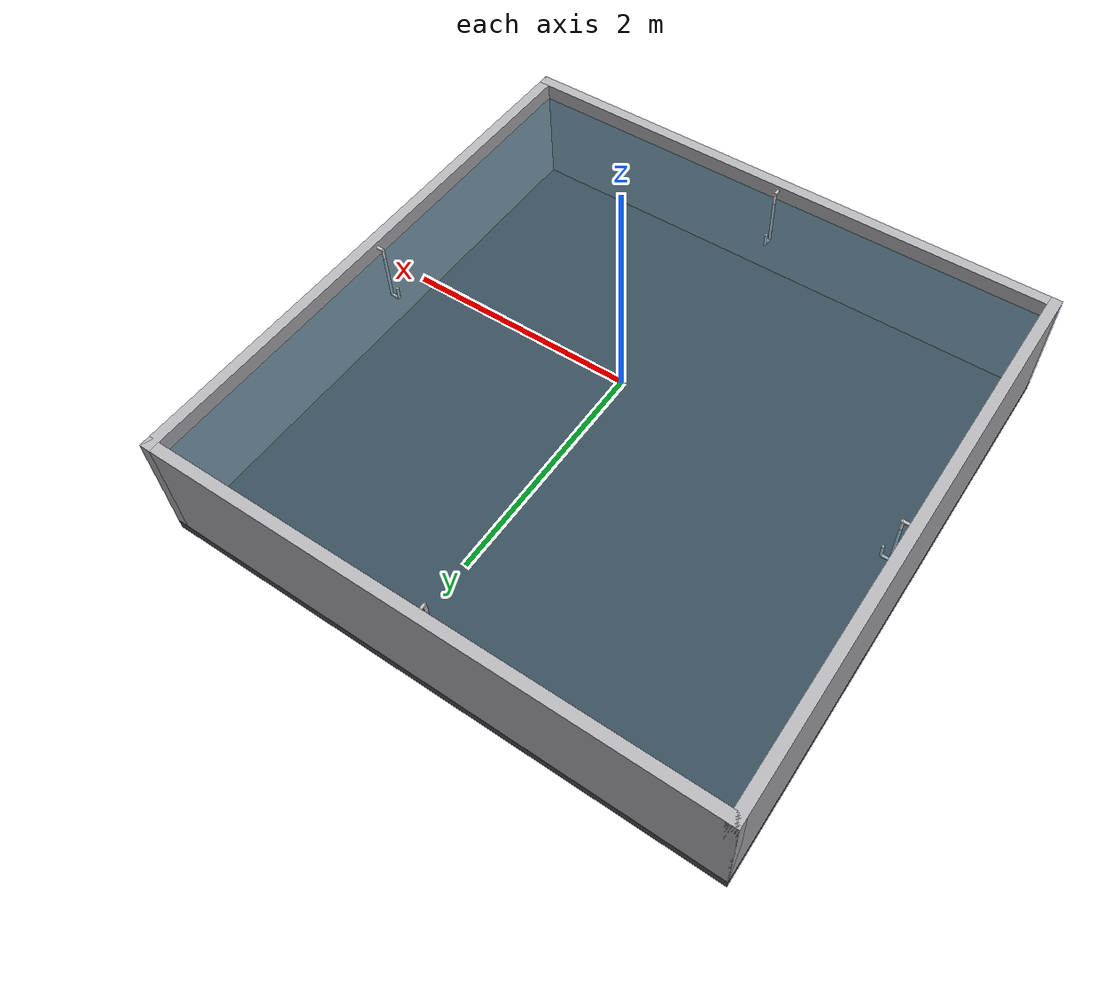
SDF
<?xml version="1.0" ?>
<sdf version="1.9">
  <world name="kki_arena">

    <physics name="1ms" type="ignored">
      <max_step_size>0.001</max_step_size>
      <real_time_factor>1.0</real_time_factor>
    </physics>

    <!-- collision_detector=bullet: hindari bug ODE "aabbBound" assert
         (dxHashSpace::collide integer-overflow, libode.so.8) - lihat
         catatan sama di kki_arena.sdf. -->
    <plugin filename="gz-sim-physics-system"
            name="gz::sim::systems::Physics">
      <engine>
        <filename>gz-physics-dartsim-plugin</filename>
      </engine>
      <dart>
        <collision_detector>bullet</collision_detector>
      </dart>
    </plugin>
    <plugin filename="gz-sim-user-commands-system"
            name="gz::sim::systems::UserCommands"/>
    <plugin filename="gz-sim-scene-broadcaster-system"
            name="gz::sim::systems::SceneBroadcaster"/>
    <plugin filename="gz-sim-contact-system"
            name="gz::sim::systems::Contact"/>

    <!-- Sensor Milestone 3: IMU + kamera (render). -->
    <plugin filename="gz-sim-imu-system"
            name="gz::sim::systems::Imu"/>
    <plugin filename="gz-sim-sensors-system"
            name="gz::sim::systems::Sensors">
      <render_engine>ogre2</render_engine>
    </plugin>

    <plugin filename="gz-sim-buoyancy-system"
            name="gz::sim::systems::Buoyancy">
      <graded_buoyancy>
        <default_density>1000.0</default_density>
        <density_change>
          <above_depth>0.0</above_depth>
          <density>1.0</density>
        </density_change>
      </graded_buoyancy>
    </plugin>

    <scene>
      <ambient>0.4 0.4 0.4 1</ambient>
      <background>0.1 0.2 0.35 1</background>
      <grid>false</grid>
    </scene>

    <light type="directional" name="sun">
      <cast_shadows>true</cast_shadows>
      <pose>0 0 10 0 0 0</pose>
      <diffuse>0.9 0.9 0.9 1</diffuse>
      <specular>0.2 0.2 0.2 1</specular>
      <direction>-0.3 0.2 -0.9</direction>
    </light>

    <!-- ================= Cangkang kolam: lantai + 4 dinding ================= -->
    <!-- Interior 5 x 5 m; muka dalam dinding di x = +/-2.5, y = +/-2.5.
         Dinding tebal 0.1 m, tinggi 1.05 m (dari dasar -0.9 sampai freeboard +0.15). -->
    <model name="pool">
      <static>true</static>

      <!-- Lantai: permukaan atas di z = -0.9. -->
      <link name="floor">
        <pose>0 0 -0.95 0 0 0</pose>
        <collision name="floor_collision">
          <geometry><box><size>5.2 5.2 0.1</size></box></geometry>
        </collision>
        <visual name="floor_visual">
          <geometry><box><size>5.2 5.2 0.1</size></box></geometry>
          <material>
            <ambient>0.20 0.20 0.22 1</ambient>
            <diffuse>0.30 0.30 0.32 1</diffuse>
          </material>
        </visual>
      </link>

      <!-- Dinding +X (muka dalam di x = 2.5). -->
      <link name="wall_px">
        <pose>2.55 0 -0.375 0 0 0</pose>
        <collision name="wall_px_collision">
          <geometry><box><size>0.1 5.2 1.05</size></box></geometry>
        </collision>
        <visual name="wall_px_visual">
          <geometry><box><size>0.1 5.2 1.05</size></box></geometry>
          <material>
            <ambient>0.55 0.55 0.57 1</ambient>
            <diffuse>0.70 0.70 0.72 1</diffuse>
          </material>
        </visual>
      </link>

      <!-- Dinding -X. -->
      <link name="wall_nx">
        <pose>-2.55 0 -0.375 0 0 0</pose>
        <collision name="wall_nx_collision">
          <geometry><box><size>0.1 5.2 1.05</size></box></geometry>
        </collision>
        <visual name="wall_nx_visual">
          <geometry><box><size>0.1 5.2 1.05</size></box></geometry>
          <material>
            <ambient>0.55 0.55 0.57 1</ambient>
            <diffuse>0.70 0.70 0.72 1</diffuse>
          </material>
        </visual>
      </link>

      <!-- Dinding +Y (muka dalam di y = 2.5). -->
      <link name="wall_py">
        <pose>0 2.55 -0.375 0 0 0</pose>
        <collision name="wall_py_collision">
          <geometry><box><size>5.2 0.1 1.05</size></box></geometry>
        </collision>
        <visual name="wall_py_visual">
          <geometry><box><size>5.2 0.1 1.05</size></box></geometry>
          <material>
            <ambient>0.55 0.55 0.57 1</ambient>
            <diffuse>0.70 0.70 0.72 1</diffuse>
          </material>
        </visual>
      </link>

      <!-- Dinding -Y. -->
      <link name="wall_ny">
        <pose>0 -2.55 -0.375 0 0 0</pose>
        <collision name="wall_ny_collision">
          <geometry><box><size>5.2 0.1 1.05</size></box></geometry>
        </collision>
        <visual name="wall_ny_visual">
          <geometry><box><size>5.2 0.1 1.05</size></box></geometry>
          <material>
            <ambient>0.55 0.55 0.57 1</ambient>
            <diffuse>0.70 0.70 0.72 1</diffuse>
          </material>
        </visual>
      </link>
    </model>

    <!-- Volume air visual (semi-transparan), tanpa collision. Permukaan di z = 0,
         dasar di z = -0.9. -->
    <model name="water_volume">
      <static>true</static>
      <pose>0 0 -0.45 0 0 0</pose>
      <link name="water_link">
        <visual name="water_visual">
          <geometry><box><size>5 5 0.9</size></box></geometry>
          <material>
            <ambient>0.0 0.25 0.4 0.25</ambient>
            <diffuse>0.0 0.35 0.5 0.25</diffuse>
          </material>
          <transparency>0.75</transparency>
        </visual>
      </link>
    </model>

    <!-- ============================ Hook / gantungan ============================ -->
    <model name="hook_d">
      <static>true</static>
      <pose>-2.5 0 0 0 0 0</pose>
      <link name="gantungan">
        <collision name="mount_collision">
          <pose>0.03 0 0.10 0 1.5708 0</pose>
          <geometry><cylinder><radius>0.013</radius><length>0.06</length></cylinder></geometry>
        </collision>
        <visual name="mount_visual">
          <pose>0.03 0 0.10 0 1.5708 0</pose>
          <geometry><cylinder><radius>0.013</radius><length>0.06</length></cylinder></geometry>
          <material><ambient>0.7 0.7 0.72 1</ambient><diffuse>0.8 0.8 0.82 1</diffuse></material>
        </visual>
        <collision name="riser_collision">
          <pose>0.06 0 -0.175 0 0 0</pose>
          <geometry><cylinder><radius>0.013</radius><length>0.55</length></cylinder></geometry>
        </collision>
        <visual name="riser_visual">
          <pose>0.06 0 -0.175 0 0 0</pose>
          <geometry><cylinder><radius>0.013</radius><length>0.55</length></cylinder></geometry>
          <material><ambient>0.7 0.7 0.72 1</ambient><diffuse>0.8 0.8 0.82 1</diffuse></material>
        </visual>
        <collision name="bottom_collision">
          <pose>0.10 0 -0.45 0 1.5708 0</pose>
          <geometry><cylinder><radius>0.013</radius><length>0.08</length></cylinder></geometry>
        </collision>
        <visual name="bottom_visual">
          <pose>0.10 0 -0.45 0 1.5708 0</pose>
          <geometry><cylinder><radius>0.013</radius><length>0.08</length></cylinder></geometry>
          <material><ambient>0.7 0.7 0.72 1</ambient><diffuse>0.8 0.8 0.82 1</diffuse></material>
        </visual>
        <collision name="tip_collision">
          <pose>0.14 0 -0.39 0 0 0</pose>
          <geometry><cylinder><radius>0.013</radius><length>0.12</length></cylinder></geometry>
        </collision>
        <visual name="tip_visual">
          <pose>0.14 0 -0.39 0 0 0</pose>
          <geometry><cylinder><radius>0.013</radius><length>0.12</length></cylinder></geometry>
          <material><ambient>0.7 0.7 0.72 1</ambient><diffuse>0.8 0.8 0.82 1</diffuse></material>
        </visual>
      </link>
    </model>

    <model name="hook_c">
      <static>true</static>
      <pose>2.5 0 0 0 0 3.14159</pose>
      <link name="gantungan">
        <collision name="mount_collision">
          <pose>0.03 0 0.10 0 1.5708 0</pose>
          <geometry><cylinder><radius>0.013</radius><length>0.06</length></cylinder></geometry>
        </collision>
        <visual name="mount_visual">
          <pose>0.03 0 0.10 0 1.5708 0</pose>
          <geometry><cylinder><radius>0.013</radius><length>0.06</length></cylinder></geometry>
          <material><ambient>0.7 0.7 0.72 1</ambient><diffuse>0.8 0.8 0.82 1</diffuse></material>
        </visual>
        <collision name="riser_collision">
          <pose>0.06 0 -0.175 0 0 0</pose>
          <geometry><cylinder><radius>0.013</radius><length>0.55</length></cylinder></geometry>
        </collision>
        <visual name="riser_visual">
          <pose>0.06 0 -0.175 0 0 0</pose>
          <geometry><cylinder><radius>0.013</radius><length>0.55</length></cylinder></geometry>
          <material><ambient>0.7 0.7 0.72 1</ambient><diffuse>0.8 0.8 0.82 1</diffuse></material>
        </visual>
        <collision name="bottom_collision">
          <pose>0.10 0 -0.45 0 1.5708 0</pose>
          <geometry><cylinder><radius>0.013</radius><length>0.08</length></cylinder></geometry>
        </collision>
        <visual name="bottom_visual">
          <pose>0.10 0 -0.45 0 1.5708 0</pose>
          <geometry><cylinder><radius>0.013</radius><length>0.08</length></cylinder></geometry>
          <material><ambient>0.7 0.7 0.72 1</ambient><diffuse>0.8 0.8 0.82 1</diffuse></material>
        </visual>
        <collision name="tip_collision">
          <pose>0.14 0 -0.39 0 0 0</pose>
          <geometry><cylinder><radius>0.013</radius><length>0.12</length></cylinder></geometry>
        </collision>
        <visual name="tip_visual">
          <pose>0.14 0 -0.39 0 0 0</pose>
          <geometry><cylinder><radius>0.013</radius><length>0.12</length></cylinder></geometry>
          <material><ambient>0.7 0.7 0.72 1</ambient><diffuse>0.8 0.8 0.82 1</diffuse></material>
        </visual>
      </link>
    </model>

    <model name="hook_a">
      <static>true</static>
      <pose>0 -2.5 0 0 0 1.5708</pose>
      <link name="gantungan">
        <collision name="mount_collision">
          <pose>0.03 0 0.10 0 1.5708 0</pose>
          <geometry><cylinder><radius>0.013</radius><length>0.06</length></cylinder></geometry>
        </collision>
        <visual name="mount_visual">
          <pose>0.03 0 0.10 0 1.5708 0</pose>
          <geometry><cylinder><radius>0.013</radius><length>0.06</length></cylinder></geometry>
          <material><ambient>0.7 0.7 0.72 1</ambient><diffuse>0.8 0.8 0.82 1</diffuse></material>
        </visual>
        <collision name="riser_collision">
          <pose>0.06 0 -0.175 0 0 0</pose>
          <geometry><cylinder><radius>0.013</radius><length>0.55</length></cylinder></geometry>
        </collision>
        <visual name="riser_visual">
          <pose>0.06 0 -0.175 0 0 0</pose>
          <geometry><cylinder><radius>0.013</radius><length>0.55</length></cylinder></geometry>
          <material><ambient>0.7 0.7 0.72 1</ambient><diffuse>0.8 0.8 0.82 1</diffuse></material>
        </visual>
        <collision name="bottom_collision">
          <pose>0.10 0 -0.45 0 1.5708 0</pose>
          <geometry><cylinder><radius>0.013</radius><length>0.08</length></cylinder></geometry>
        </collision>
        <visual name="bottom_visual">
          <pose>0.10 0 -0.45 0 1.5708 0</pose>
          <geometry><cylinder><radius>0.013</radius><length>0.08</length></cylinder></geometry>
          <material><ambient>0.7 0.7 0.72 1</ambient><diffuse>0.8 0.8 0.82 1</diffuse></material>
        </visual>
        <collision name="tip_collision">
          <pose>0.14 0 -0.39 0 0 0</pose>
          <geometry><cylinder><radius>0.013</radius><length>0.12</length></cylinder></geometry>
        </collision>
        <visual name="tip_visual">
          <pose>0.14 0 -0.39 0 0 0</pose>
          <geometry><cylinder><radius>0.013</radius><length>0.12</length></cylinder></geometry>
          <material><ambient>0.7 0.7 0.72 1</ambient><diffuse>0.8 0.8 0.82 1</diffuse></material>
        </visual>
      </link>
    </model>

    <model name="hook_b">
      <static>true</static>
      <pose>0 2.5 0 0 0 -1.5708</pose>
      <link name="gantungan">
        <collision name="mount_collision">
          <pose>0.03 0 0.10 0 1.5708 0</pose>
          <geometry><cylinder><radius>0.013</radius><length>0.06</length></cylinder></geometry>
        </collision>
        <visual name="mount_visual">
          <pose>0.03 0 0.10 0 1.5708 0</pose>
          <geometry><cylinder><radius>0.013</radius><length>0.06</length></cylinder></geometry>
          <material><ambient>0.7 0.7 0.72 1</ambient><diffuse>0.8 0.8 0.82 1</diffuse></material>
        </visual>
        <collision name="riser_collision">
          <pose>0.06 0 -0.175 0 0 0</pose>
          <geometry><cylinder><radius>0.013</radius><length>0.55</length></cylinder></geometry>
        </collision>
        <visual name="riser_visual">
          <pose>0.06 0 -0.175 0 0 0</pose>
          <geometry><cylinder><radius>0.013</radius><length>0.55</length></cylinder></geometry>
          <material><ambient>0.7 0.7 0.72 1</ambient><diffuse>0.8 0.8 0.82 1</diffuse></material>
        </visual>
        <collision name="bottom_collision">
          <pose>0.10 0 -0.45 0 1.5708 0</pose>
          <geometry><cylinder><radius>0.013</radius><length>0.08</length></cylinder></geometry>
        </collision>
        <visual name="bottom_visual">
          <pose>0.10 0 -0.45 0 1.5708 0</pose>
          <geometry><cylinder><radius>0.013</radius><length>0.08</length></cylinder></geometry>
          <material><ambient>0.7 0.7 0.72 1</ambient><diffuse>0.8 0.8 0.82 1</diffuse></material>
        </visual>
        <collision name="tip_collision">
          <pose>0.14 0 -0.39 0 0 0</pose>
          <geometry><cylinder><radius>0.013</radius><length>0.12</length></cylinder></geometry>
        </collision>
        <visual name="tip_visual">
          <pose>0.14 0 -0.39 0 0 0</pose>
          <geometry><cylinder><radius>0.013</radius><length>0.12</length></cylinder></geometry>
          <material><ambient>0.7 0.7 0.72 1</ambient><diffuse>0.8 0.8 0.82 1</diffuse></material>
        </visual>
      </link>
    </model>

  </world>
</sdf>
